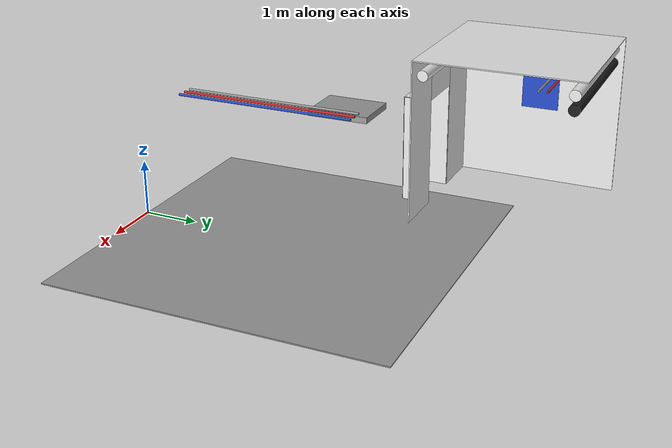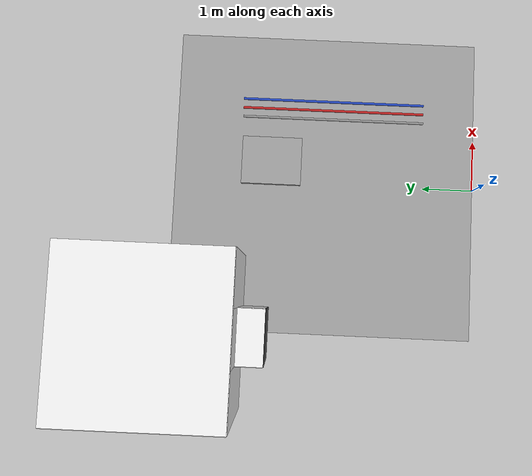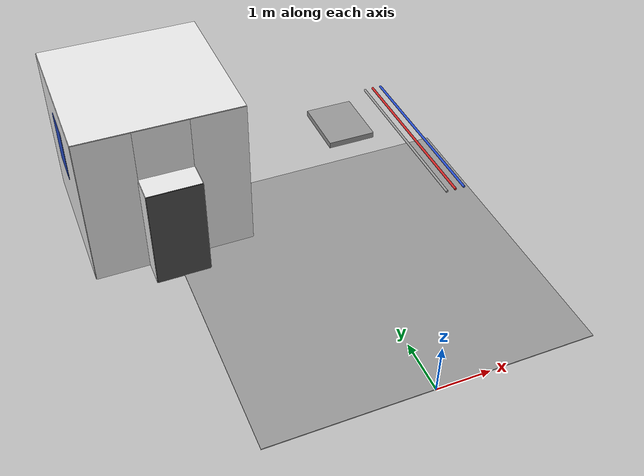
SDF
<sdf version="1.6">
 <world name="default">
  <model name="ceiling_1_0_1_2_1">
   <pose>0.0 4.0 2.55 0.0 0.0 0.0</pose>
   <link name="link_1">
    <visual name="visual">
     <geometry><box><size>0.8 1 0.1</size></box></geometry>
     <material>
      <script><uri>file://media/materials/scripts/gazebo.material</uri><name>Gazebo/Grey</name></script>
     </material>
    </visual>
    <collision name="collision"><geometry><box><size>0.8 1 0.1</size></box></geometry></collision>
   </link>
   <static>1</static>
  </model>
  <model name="grey_pipe_right_0_1_0_1">
   <static>1</static>
   <pose>0.0 3.0 2.76 0.0 0.0 0.0</pose>
   <link name="link_0">
    <visual name="visual">
     <pose>0.7 0 0 1.57 0 0</pose>
     <geometry><cylinder><radius>0.02</radius><length>3.0</length></cylinder></geometry>
     <material>
      <script><uri>file://media/materials/scripts/gazebo.material</uri><name>Gazebo/Grey</name></script>
     </material>
    </visual>
    <collision name="collision">
     <pose>0.7 0 0 1.57 0 0</pose>
     <geometry><cylinder><radius>0.02</radius><length>3.0</length></cylinder></geometry>
    </collision>
   </link>
  </model>
  <model name="red_pipe_right_0_1_0_1">
   <static>1</static>
   <pose>0.0 3.0 2.76 0.0 0.0 0.0</pose>
   <link name="link_0">
    <visual name="visual">
     <pose>0.85 0 0 1.57 0 0</pose>
     <geometry><cylinder><radius>0.02</radius><length>3.0</length></cylinder></geometry>
     <material>
      <script><uri>file://media/materials/scripts/gazebo.material</uri><name>Gazebo/Red</name></script>
     </material>
    </visual>
    <collision name="collision">
     <pose>0.85 0 0 1.57 0 0</pose>
     <geometry><cylinder><radius>0.02</radius><length>3.0</length></cylinder></geometry>
    </collision>
   </link>
  </model>
  <model name="blue_pipe_right_0_1_0_1">
   <static>1</static>
   <pose>0.0 3.0 2.76 0.0 0.0 0.0</pose>
   <link name="link_0">
    <visual name="visual">
     <pose>1 0 0 1.57 0 0</pose>
     <geometry><cylinder><radius>0.02</radius><length>3.0</length></cylinder></geometry>
     <material>
      <script><uri>file://media/materials/scripts/gazebo.material</uri><name>Gazebo/Blue</name></script>
     </material>
    </visual>
    <collision name="collision">
     <pose>1 0 0 1.57 0 0</pose>
     <geometry><cylinder><radius>0.02</radius><length>3.0</length></cylinder></geometry>
    </collision>
   </link>
  </model>
  <model name="wall_bottom_0_1_0_1">
   <static>1</static>
   <pose>0.0 3.0 0.0 0.0 0.0 0.0</pose>
   <link name="link">
    <collision name="collision"><geometry><box><size>6.0 6.0 0.02</size></box></geometry></collision>
    <visual name="visual">
     <material>
      <script><name>Gazebo/Grey</name><uri>file://media/materials/scripts/gazebo.material</uri></script>
     </material>
     <geometry><box><size>6.0 6.0 0.02</size></box></geometry>
    </visual>
   </link>
  </model>
  <model name="wall_front_-1_2_0_2">
   <static>1</static>
   <pose>-4.5 6.0 1.5 0.0 0.0 1.57</pose>
   <link name="link">
    <collision name="collision"><geometry><box><size>3.0 0.02 3.0</size></box></geometry></collision>
    <visual name="visual">
     <material>
      <script><name>Gazebo/White</name><uri>file://media/materials/scripts/gazebo.material</uri></script>
     </material>
     <geometry><box><size>3.0 0.02 3.0</size></box></geometry>
    </visual>
   </link>
  </model>
  <model name="wall_top_-1_2_0_2">
   <static>1</static>
   <pose>-3.0 6.0 3.0 1.57 0.0 1.57</pose>
   <link name="link">
    <collision name="collision"><geometry><box><size>3.0 0.02 3.0</size></box></geometry></collision>
    <visual name="visual">
     <material>
      <script><name>Gazebo/White</name><uri>file://media/materials/scripts/gazebo.material</uri></script>
     </material>
     <geometry><box><size>3.0 0.02 3.0</size></box></geometry>
    </visual>
   </link>
  </model>
  <model name="white_pipe_left_-1_2_0_2">
   <static>1</static>
   <pose>-3.0 6.0 2.76 0.0 0.0 1.57</pose>
   <link name="link_0">
    <visual name="visual">
     <pose>-1.3 0 0 1.57 0 0</pose>
     <geometry><cylinder><radius>0.1</radius><length>3.0</length></cylinder></geometry>
     <material>
      <script><uri>file://media/materials/scripts/gazebo.material</uri><name>Gazebo/White</name></script>
     </material>
    </visual>
    <collision name="collision">
     <pose>-1.3 0 0 1.57 0 0</pose>
     <geometry><cylinder><radius>0.1</radius><length>3.0</length></cylinder></geometry>
    </collision>
   </link>
  </model>
  <model name="white_pipe_right_-1_2_0_2">
   <static>1</static>
   <pose>-3.0 6.0 2.76 0.0 0.0 1.57</pose>
   <link name="link_0">
    <visual name="visual">
     <pose>1.3 0 0 1.57 0 0</pose>
     <geometry><cylinder><radius>0.1</radius><length>3.0</length></cylinder></geometry>
     <material>
      <script><uri>file://media/materials/scripts/gazebo.material</uri><name>Gazebo/White</name></script>
     </material>
    </visual>
    <collision name="collision">
     <pose>1.3 0 0 1.57 0 0</pose>
     <geometry><cylinder><radius>0.1</radius><length>3.0</length></cylinder></geometry>
    </collision>
   </link>
  </model>
  <model name="black_pipe_right_-1_2_0_2">
   <static>1</static>
   <pose>-3.0 6.0 2.76 0.0 0.0 1.57</pose>
   <link name="link_0">
    <visual name="visual">
     <pose>1.3 0 -0.25 1.57 0 0</pose>
     <geometry><cylinder><radius>0.1</radius><length>3.0</length></cylinder></geometry>
     <material>
      <script><uri>file://media/materials/scripts/gazebo.material</uri><name>Gazebo/Black</name></script>
     </material>
    </visual>
    <collision name="collision">
     <pose>1.3 0 -0.25 1.57 0 0</pose>
     <geometry><cylinder><radius>0.1</radius><length>3.0</length></cylinder></geometry>
    </collision>
   </link>
  </model>
  <model name="grey_pipe_right_-1_2_0_2">
   <static>1</static>
   <pose>-3.0 6.0 2.76 0.0 0.0 1.57</pose>
   <link name="link_0">
    <visual name="visual">
     <pose>0.7 0 0 1.57 0 0</pose>
     <geometry><cylinder><radius>0.02</radius><length>3.0</length></cylinder></geometry>
     <material>
      <script><uri>file://media/materials/scripts/gazebo.material</uri><name>Gazebo/Grey</name></script>
     </material>
    </visual>
    <collision name="collision">
     <pose>0.7 0 0 1.57 0 0</pose>
     <geometry><cylinder><radius>0.02</radius><length>3.0</length></cylinder></geometry>
    </collision>
   </link>
  </model>
  <model name="red_pipe_right_-1_2_0_2">
   <static>1</static>
   <pose>-3.0 6.0 2.76 0.0 0.0 1.57</pose>
   <link name="link_0">
    <visual name="visual">
     <pose>0.85 0 0 1.57 0 0</pose>
     <geometry><cylinder><radius>0.02</radius><length>3.0</length></cylinder></geometry>
     <material>
      <script><uri>file://media/materials/scripts/gazebo.material</uri><name>Gazebo/Red</name></script>
     </material>
    </visual>
    <collision name="collision">
     <pose>0.85 0 0 1.57 0 0</pose>
     <geometry><cylinder><radius>0.02</radius><length>3.0</length></cylinder></geometry>
    </collision>
   </link>
  </model>
  <model name="panel_-1_2_0_2">
   <static>1</static>
   <pose>-4.5 6.0 1.95 0.0 0.0 3.14</pose>
   <link name="link">
    <collision name="collision"><geometry><box><size>0.04 0.7 1</size></box></geometry></collision>
    <visual name="visual">
     <material>
      <script><name>Gazebo/Blue</name><uri>file://media/materials/scripts/gazebo.material</uri></script>
     </material>
     <geometry><box><size>0.04 0.7 1</size></box></geometry>
    </visual>
   </link>
  </model>
  <model name="wall_left_front_left_-1_2_0_2">
   <static>1</static>
   <pose>-4.0 4.5 1.5 0.0 0.0 3.14</pose>
   <link name="link">
    <collision name="collision"><geometry><box><size>1.0 0.02 3.0</size></box></geometry></collision>
    <visual name="visual">
     <material>
      <script><name>Gazebo/White</name><uri>file://media/materials/scripts/gazebo.material</uri></script>
     </material>
     <geometry><box><size>1.0 0.02 3.0</size></box></geometry>
    </visual>
   </link>
  </model>
  <model name="wall_left_front_right_-1_2_0_2">
   <static>1</static>
   <pose>-2.0 4.5 1.5 0.0 0.0 3.14</pose>
   <link name="link">
    <collision name="collision"><geometry><box><size>1.0 0.02 3.0</size></box></geometry></collision>
    <visual name="visual">
     <material>
      <script><name>Gazebo/White</name><uri>file://media/materials/scripts/gazebo.material</uri></script>
     </material>
     <geometry><box><size>1.0 0.02 3.0</size></box></geometry>
    </visual>
   </link>
  </model>
  <model name="wall_left_front_up_-1_2_0_2">
   <static>1</static>
   <pose>-3.0 4.5 2.5 0.0 0.0 3.14</pose>
   <link name="link">
    <collision name="collision"><geometry><box><size>1.0 0.02 1.0</size></box></geometry></collision>
    <visual name="visual">
     <material>
      <script><name>Gazebo/White</name><uri>file://media/materials/scripts/gazebo.material</uri></script>
     </material>
     <geometry><box><size>1.0 0.02 1.0</size></box></geometry>
    </visual>
   </link>
  </model>
  <model name="wall_left_inside_back_-1_2_0_2">
   <static>1</static>
   <pose>-3.0 4.0 1.0 0.0 0.0 3.14</pose>
   <link name="link">
    <collision name="collision"><geometry><box><size>1 0.02 2</size></box></geometry></collision>
    <visual name="visual">
     <material>
      <script><name>Gazebo/DarkGrey</name><uri>file://media/materials/scripts/gazebo.material</uri></script>
     </material>
     <geometry><box><size>1 0.02 2</size></box></geometry>
    </visual>
   </link>
  </model>
  <model name="wall_left_inside_left_-1_2_0_2">
   <static>1</static>
   <pose>-3.5 4.25 1.0 0.0 0.0 1.57</pose>
   <link name="link">
    <collision name="collision"><geometry><box><size>0.5 0.02 2</size></box></geometry></collision>
    <visual name="visual">
     <material>
      <script><name>Gazebo/White</name><uri>file://media/materials/scripts/gazebo.material</uri></script>
     </material>
     <geometry><box><size>0.5 0.02 2</size></box></geometry>
    </visual>
   </link>
  </model>
  <model name="wall_left_inside_right_-1_2_0_2">
   <static>1</static>
   <pose>-2.5 4.25 1.0 0.0 0.0 1.57</pose>
   <link name="link">
    <collision name="collision"><geometry><box><size>0.5 0.02 2</size></box></geometry></collision>
    <visual name="visual">
     <material>
      <script><name>Gazebo/White</name><uri>file://media/materials/scripts/gazebo.material</uri></script>
     </material>
     <geometry><box><size>0.5 0.02 2</size></box></geometry>
    </visual>
   </link>
  </model>
  <model name="wall_left_inside_top_-1_2_0_2">
   <static>1</static>
   <pose>-3.0 4.25 2.0 1.57 0.0 3.14</pose>
   <link name="link">
    <collision name="collision"><geometry><box><size>1 0.02 0.5</size></box></geometry></collision>
    <visual name="visual">
     <material>
      <script><name>Gazebo/White</name><uri>file://media/materials/scripts/gazebo.material</uri></script>
     </material>
     <geometry><box><size>1 0.02 0.5</size></box></geometry>
    </visual>
   </link>
  </model>
 </world>
</sdf>
